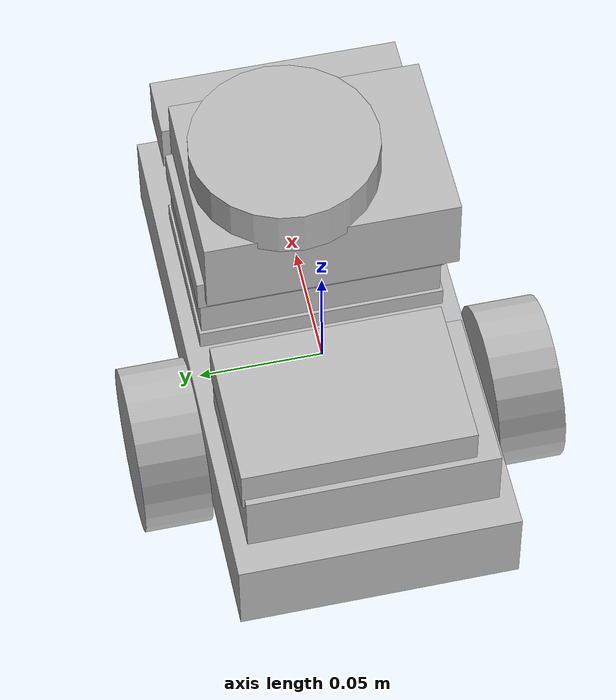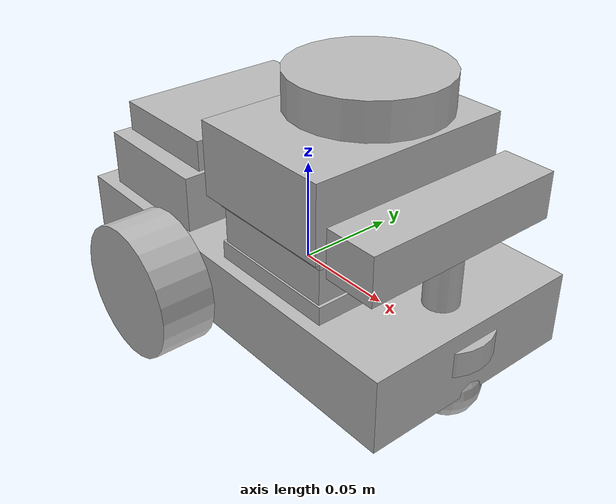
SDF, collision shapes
<?xml version='1.0'?>
<sdf version='1.5'>
  <model name='real_lidarbot'>
    <static>false</static>

    <link name='base_footprint'/>
    <pose>0 0 0 0 0 0</pose>

    <link name='base_link'>
      <collision name='base_link_collision'>
        <pose>0 0 0.002 0 0 0</pose>
        <inertial>
          <mass>0.864</mass>
          <inertia>
            <ixx>0.0009594</ixx>
            <iyy>0.003263</iyy>
            <izz>0.004046</izz>
            <ixy>0</ixy>
            <ixz>0</ixz>
            <iyz>0</iyz>
          </inertia>
        </inertial>
        <geometry>
          <box>
            <size>.21 .11 .035</size>
          </box>
        </geometry>
      </collision>
      <visual name='base_link_visual'>
        <geometry>
          <mesh>
            <uri>model://lidarbot_description/meshes/robot_base_link.dae</uri>
          </mesh>
        </geometry>
      </visual>

      <!-- Caster mount -->
      <collision name='caster_mount_collision'>
        <pose>0.086 0 0.005 0 0 0</pose>
        <geometry>
          <cylinder>
            <radius>0.023</radius>
            <length>0.012</length>
          </cylinder>
        </geometry>
      </collision>
      <visual name='caster_mount_visual'>
        <pose>0.086 0 -0.035 0 0 0</pose>
        <geometry>
          <mesh>
            <uri>model://lidarbot_description/meshes/caster_mount.dae</uri>
          </mesh>
        </geometry>
      </visual>

      <collision name='rpi_4_stand_collision'>
        <pose>-0.06 0 0.03 0 0 -1.5707</pose>
        <geometry>
          <box>
            <size>0.098 0.065 0.034</size>
          </box>
        </geometry>
      </collision>
      <visual name='rpi_4_stand_visual'>
        <pose>-0.06 0.015 0.043 3.1414 0 -3.1414</pose>
        <geometry>
          <mesh>
            <uri>model://lidarbot_description/meshes/rpi_stand.dae</uri>
          </mesh>
        </geometry>
      </visual>

      <!-- Raspberry Pi 4 -->
      <collision name='rpi_4_collision'>
        <pose>-0.06 0.005 0.052 0 0 -1.5707</pose>
        <geometry>
          <box>
            <size>0.09 0.06 0.02</size>
          </box>
        </geometry>
      </collision>
      <visual name='rpi_4_visual'>
        <pose>-0.06 0.0035 0.045 0 0 1.5707</pose>
        <geometry>
          <mesh>
            <uri>model://lidarbot_description/meshes/rpi_4.dae</uri>
          </mesh>
        </geometry>
      </visual>

      <!-- Power bank stand -->
      <collision name='power_bank_stand_collision'>
        <pose>0.033 0 0.0205 0 0 -1.5707</pose>
        <geometry>
          <box>
            <size>0.098 0.065 0.015</size>
          </box>
        </geometry>
      </collision>
      <visual name='power_bank_stand_visual'>
      <pose>0.033 0.015 0.0435 3.1414 0 3.1414</pose>
        <geometry>
          <mesh>
            <uri>model://lidarbot_description/meshes/power_bank_stand.dae</uri>
          </mesh>
        </geometry>
      </visual>

      <!-- Power bank -->
      <collision name='power_bank_collision'>
      <pose>0.033 0 0.038 0 0 -1.5707</pose>
        <geometry>
          <box>
            <size>0.096 0.062 0.02</size>
          </box>
        </geometry>
      </collision>
      <visual name='power_bank_visual'>
      <pose>0.0635 0.0475 0.0278 0 0 1.5707</pose>
        <geometry>
          <mesh>
            <uri>model://lidarbot_description/meshes/power_bank.dae</uri>
          </mesh>
        </geometry>
      </visual>

      <!-- Rplidar stand -->
      <collision name='rplidar_stand_collision'>
        <pose>0.033 0 0.053 0 0 -1.5707</pose>
        <geometry>
          <box>
            <size>0.098 0.065 0.015</size>
          </box>
        </geometry>
      </collision>
      <visual name='rplidar_stand_visual'>
      <pose>0.033 0.015 0.03 0 0 -6.2828</pose>
        <geometry>
          <mesh>
            <uri>model://lidarbot_description/meshes/rplidar_stand.dae</uri>
          </mesh>
        </geometry>
      </visual>

      <!-- Rplidar base -->
      <collision name='rplidar_base_collision'>
        <pose>0.033 -0.004 0.0685 0 0 -1.5707</pose>
        <geometry>
          <box>
            <size>0.1 0.072 0.035</size>
          </box>
        </geometry>
      </collision>
      <visual name='rplidar_base_visual'>
      <pose>0.03485 0.0087 0.05 0 0 -1.5707</pose>
        <geometry>
          <mesh>
            <uri>model://lidarbot_description/meshes/rplidar_base.dae</uri>
          </mesh>
        </geometry>
      </visual>

      <!-- Depth camera mount -->
      <collision name='camera_mount_collision'>
        <pose>0.085 0 0.0285 0 0 0</pose>
        <geometry>
          <cylinder>
            <radius>0.008</radius>
            <length>0.031</length>
          </cylinder>
        </geometry>
      </collision>
      <visual name='camera_mount_visual'>
      <pose>0.085 0 0.0285 0 0 0</pose>
      <geometry>
        <cylinder>
          <radius>0.007</radius>
          <length>0.03</length>
        </cylinder>
      </geometry>
      </visual>

    </link>

    <!-- Imu sensor -->
    <link name='imu_link'>
      <pose>-0.06 0 0.027 0 0 3.1414</pose>
      <gravity>true</gravity>
      <sensor name='lidarbot_imu' type='imu'>
        <plugin name='real_lidarbot_imu' filename='libgazebo_ros_imu_sensor.so'>
          <initial_orientation_as_reference>false</initial_orientation_as_reference>
          <frame_name>imu_link</frame_name>
          <ros>
            <namespace>/imu</namespace>
            <remapping>~/out:=data</remapping>
          </ros>
        </plugin>
        <always_on>true</always_on>
        <update_rate>100</update_rate>
        <visualize>true</visualize>
        <imu>
          <orientation>
            <x>
              <noise type="gaussian">
                <mean>0.0</mean>
                <stddev>2e-3</stddev>
              </noise>
            </x>
            <y>
              <noise type="gaussian">
                <mean>0.0</mean>
                <stddev>2e-3</stddev>
              </noise>
            </y>
            <z>
              <noise type="gaussian">
                <mean>0.0</mean>
                <stddev>2e-3</stddev>
              </noise>
            </z>
          </orientation>
          <angular_velocity>
            <x>
              <noise type="gaussian">
                <mean>0.0</mean>
                <stddev>2e-4</stddev>
              </noise>
            </x>
            <y>
              <noise type="gaussian">
                <mean>0.0</mean>
                <stddev>2e-4</stddev>
              </noise>
            </y>
            <z>
              <noise type="gaussian">
                <mean>0.0</mean>
                <stddev>2e-4</stddev>
              </noise>
            </z>
          </angular_velocity>
          <linear_acceleration>
            <x>
              <noise type="gaussian">
                <mean>0.0</mean>
                <stddev>1.7e-2</stddev>
              </noise>
            </x>
            <y>
              <noise type="gaussian">
                <mean>0.0</mean>
                <stddev>1.7e-2</stddev>
              </noise>
            </y>
            <z>
              <noise type="gaussian">
                <mean>0.0</mean>
                <stddev>1.7e-2</stddev>
              </noise>
            </z>
          </linear_acceleration>
        </imu>
      </sensor>
    </link>

    <!-- Left wheel link  -->
    <link name='left_wheel'>
      <pose>-0.0288 0.055 0 0 1.5707 1.5707</pose>
      <inertial>
        <mass>0.031</mass>
        <inertia>
          <ixx>0.000013724</ixx>
          <iyy>0.000013724</iyy>
          <izz>0.000024219</izz>
          <ixy>0</ixy>
          <ixz>0</ixz>
          <iyz>0</iyz>
        </inertia>
      </inertial>
      <collision name='left_wheel_collision'>
        <pose>0 0 0.015 0 0 0</pose>
        <geometry>
          <cylinder>
            <radius>0.0325</radius>
            <length>0.0265</length>
          </cylinder>
        </geometry>
      </collision>
      <visual name='left_wheel_visual'>
        <geometry>
          <mesh>
            <uri>model://lidarbot_description/meshes/left_wheel.dae</uri>
          </mesh>
        </geometry>
      </visual>
    </link>

    <!-- Right robot wheel  -->
    <link name='right_wheel'>
      <pose>-0.0288 -0.064 0 0 1.5707 1.5707</pose>
      <inertial>
        <mass>0.031</mass>
        <inertia>
          <ixx>0.000013724</ixx>
          <iyy>0.000013724</iyy>
          <izz>0.000024219</izz>
          <ixy>0</ixy>
          <ixz>0</ixz>
          <iyz>0</iyz>
        </inertia>
      </inertial>
      <collision name='right_wheel_collision'>
        <pose>0 0 -0.007 0 0 0</pose>
        <geometry>
          <cylinder>
            <radius>0.0325</radius>
            <length>0.0265</length>
          </cylinder>
        </geometry>
      </collision>
      <visual name='right_wheel_visual'>
        <geometry>
          <mesh>
            <uri>model://lidarbot_description/meshes/right_wheel.dae</uri>
          </mesh>
        </geometry>
      </visual>
    </link>

    <!-- Caster wheel -->
    <link name='caster_wheel'>
      <pose>0.092 0 -0.0175 0 0 1.5707</pose>
      <collision name='caster_wheel_collision'>
        <geometry>
          <sphere>
            <radius>0.015</radius>
          </sphere>
        </geometry>
        <surface>
          <friction>
            <ode>
              <mu>0.5</mu>
              <mu2>0.5</mu2>
              <slip1>0.01</slip1>
              <slip2>0.01</slip2>
              <fdir1>0 0 1</fdir1>
            </ode>
          </friction>
        </surface>
      </collision>
      <visual name='caster_wheel_visual'>
        <pose>0 -0.007 0 0 0 0</pose>
        <geometry>
          <mesh>
            <uri>model://lidarbot_description/meshes/caster_wheel.dae</uri>
          </mesh>
        </geometry>
      </visual>
    </link>

    <!-- Rplidar top -->
    <link name='lidar_link'>
      <pose>0.0315 0.008 0.083 0 0 -1.5707</pose>
      <collision name='lidar_collision'>
        <pose>0 -0.002 0.01 0 0 0</pose>
        <geometry>
          <cylinder>
            <radius>0.037</radius>
            <length>0.021</length>
          </cylinder>
        </geometry>
      </collision>
      <visual name='lidar_visual'>
        <geometry>
          <mesh>
            <uri>model://lidarbot_description/meshes/rplidar_top.dae</uri>
          </mesh>
        </geometry>
      </visual>

      <sensor type='ray' name='lidar'>
        <pose>0 0 0.01 0 0 -0.7854</pose>
        <always_on>true</always_on>
        <visualize>false</visualize>
        <update_rate>5.5</update_rate>
        <ray>
          <scan>
            <horizontal>
              <samples>360</samples>
              <resolution>1</resolution>
              <min_angle>0</min_angle>
              <max_angle>6.28</max_angle>
            </horizontal>
          </scan>
          <range>
            <min>0.15</min>
            <max>12</max>
            <resolution>0.2</resolution>
          </range>
           <noise>
             <type>gaussian</type>
             <mean>0.0</mean>
             <stddev>0.01</stddev>
           </noise>
        </ray>
        <plugin name='scan' filename='libgazebo_ros_ray_sensor.so'>
          <ros>
            <remapping>~/out:=scan</remapping>
          </ros>
          <output_type>sensor_msgs/LaserScan</output_type>
          <frame_name>lidar_link</frame_name>
        </plugin>
      </sensor>
    </link>

    <!-- Camera -->
    <link name="camera_link_optical">
      <pose>0.0825 -0.001 0.055 -1.5707 0 -1.5707</pose>
    </link>

    <link name='camera_link'>
      <pose>0.0825 -0.001 0.055 0 0 0</pose>
      <collision name='camera_collision'>
        <pose>0.0015 0 0.002 0 0 1.5707</pose>
        <geometry>
          <box>
            <size>0.1 0.025 0.022</size>
          </box>
        </geometry>
      </collision>
      <visual name="camera_visual">
        <pose>0.0125 0 0 1.5707 0 1.5707</pose>
        <geometry>
          <mesh>
            <uri>model://lidarbot_description/meshes/d415.dae</uri>
          </mesh>
        </geometry>
      </visual>

      <sensor type='camera' name='camera'>
        <always_on>true</always_on>
        <visualize>true</visualize>
        <update_rate>10</update_rate>
        <camera>
          <horizontal_fov>1.089</horizontal_fov>
          <image>
            <format>R8G8B8</format>
            <width>640</width>
            <height>480</height>
          </image>
          <clip>
            <near>0.05</near>
            <far>8.0</far>
          </clip>
        </camera>

        <plugin name='camera_controller' filename='libgazebo_ros_camera.so'>
          <frame_name>camera_link_optical</frame_name>
        </plugin>
      </sensor>
    </link>

    <!-- Joints  -->
    <joint name='base_joint' type='fixed'>
      <pose>0 0 0 0 0 0</pose>
      <parent>base_footprint</parent>
      <child>base_link</child>
    </joint>

    <joint name='imu_joint' type='fixed'>
      <pose>0 0 0 0 0 0</pose>
      <parent>base_link</parent>
      <child>imu_link</child>
    </joint>

    <joint name='left_wheel_joint' type='revolute'>
      <pose>0 0 0 0 0 0</pose>
      <parent>base_link</parent>
      <child>left_wheel</child>
      <axis>
        <xyz>0 0 1</xyz>
      </axis>
    </joint>

    <joint name='right_wheel_joint' type='revolute'>
      <pose>0 0 0 0 0 0</pose>
      <parent>base_link</parent>
      <child>right_wheel</child>
      <axis>
        <xyz>0 0 1</xyz>
      </axis>
    </joint>

    <joint name='caster_joint' type='fixed'>
      <pose>0 0 0 0 0 0</pose>
      <parent>base_link</parent>
      <child>caster_wheel</child>
    </joint>

    <joint name='lidar_joint' type='fixed'>
      <pose>0 0 0 0 0 0</pose>
      <parent>base_link</parent>
      <child>lidar_link</child>
    </joint>

    <joint name='camera_joint' type='fixed'>
      <pose>0 0 0 0 0 0</pose>
      <parent>base_link</parent>
      <child>camera_link</child>
    </joint>

    <joint name="camera_optical_joint" type="fixed">
      <pose>0 0 0 0 0 0</pose>
      <parent>camera_link</parent>
      <child>camera_link_optical</child>
    </joint>

    <!-- Wheel Odometry -->
    <plugin name='lidarbot_diff_drive' filename='libgazebo_ros_diff_drive.so'>
      <update_rate>25</update_rate>
      <left_joint>left_wheel_joint</left_joint>
      <right_joint>right_wheel_joint</right_joint>
      <wheel_separation>0.134</wheel_separation>
      <wheel_diameter>0.067</wheel_diameter>
      <max_wheel_torque>15</max_wheel_torque>
      <max_wheel_acceleration>1.0</max_wheel_acceleration>
      <command_topic>cmd_vel</command_topic>

      <!-- Output. When false, publish no wheel odometry data to a ROS topic -->
      <publish_odom>true</publish_odom>
      <!-- When true, publish coordinate transform from odom to base_footprint -->
      <!-- Addison usually uses the robot_localization package to publish this transform -->
      <publish_odom_tf>true</publish_odom_tf>
      <!-- When true, publish coordinate transform from base_link to the wheels -->
      <!-- The robot_state_publisher package is often used to publish this transform -->
      <publish_wheel_tf>false</publish_wheel_tf>
      <!-- Topic to publish nav_msgs/Odometry messages, defaults to `odom` -->
      <odometry_topic>odom</odometry_topic>
      <!-- Odometry frame, defaults to `odom` -->
      <odometry_frame>odom</odometry_frame>
      <!-- Robot frame to calculate odometry from, defaults to `base_footprint` -->
      <robot_base_frame>base_footprint</robot_base_frame>
      <!-- Odometry source, 0 for ENCODER, 1 for WORLD, defaults to WORLD -->
      <odometry_source>1</odometry_source>
      <!-- Change the ROS topic we will publish the odometry data to -->
      <ros>
        <remapping>odom:=wheel/odometry</remapping>
      </ros>
    </plugin>

    <!-- Joint State Publisher -->
    <plugin name='lidarbot_joint_state' filename='libgazebo_ros_joint_state_publisher.so'>
      <ros>
        <remapping>~/out:=joint_states</remapping>
      </ros>
      <update_rate>25</update_rate>
      <joint_name>left_wheel_joint</joint_name>
      <joint_name>right_wheel_joint</joint_name>
    </plugin>
  </model>
</sdf>
